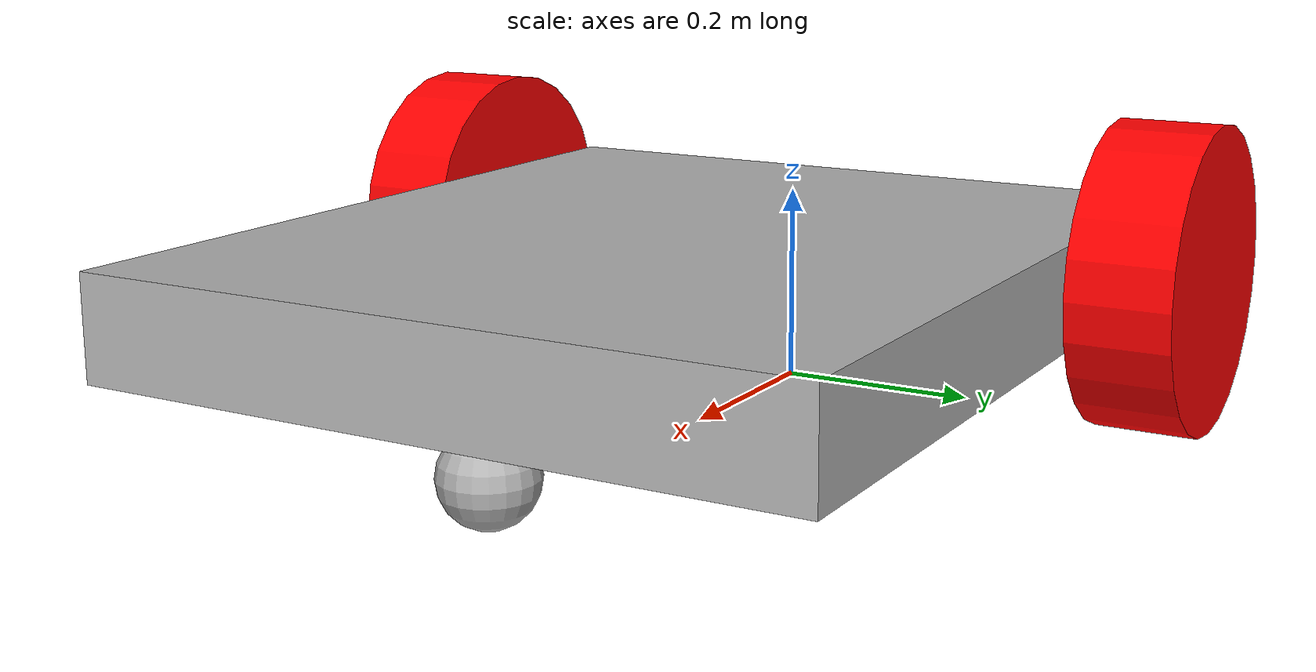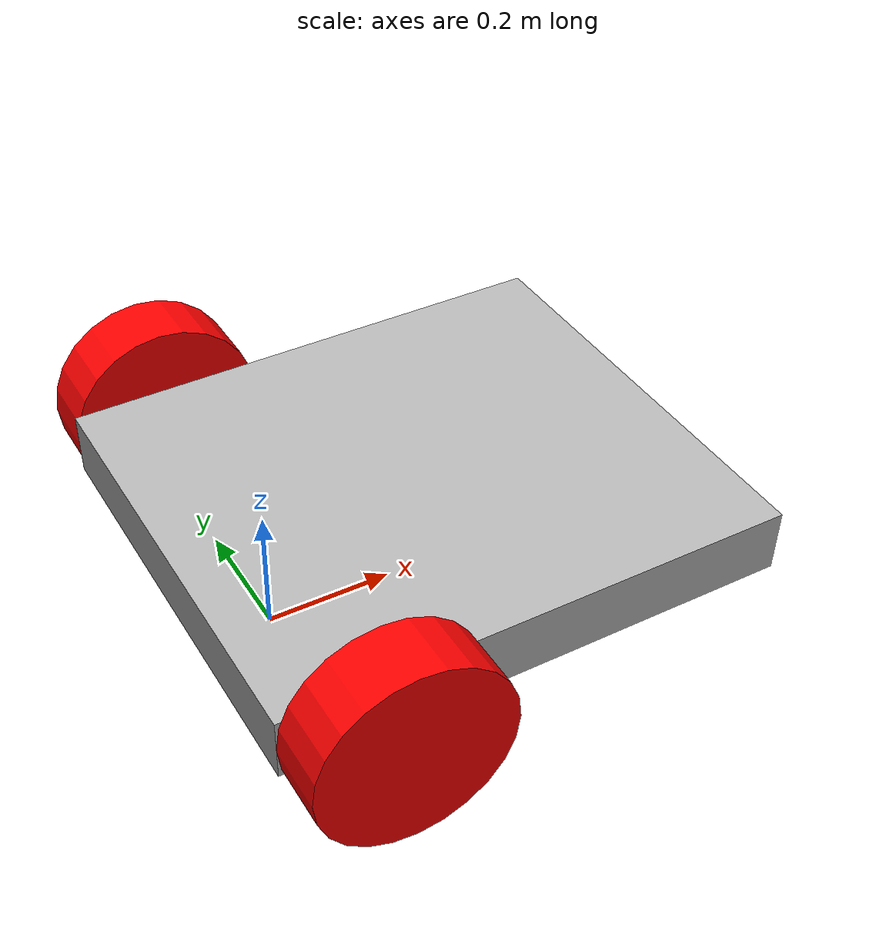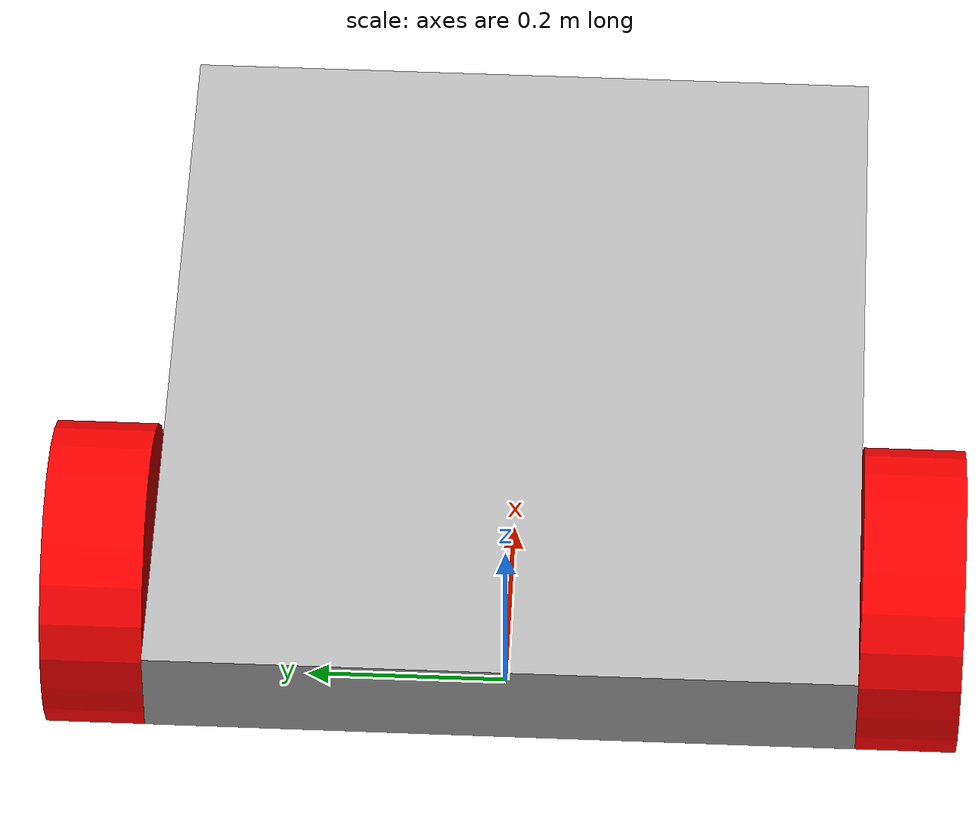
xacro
<?xml version="1.0"?>

<robot xmlns:xacro="http://ww.ros.org/wiki/xacro" name="diff_robot">

    <!-- Every value is in SI units -->
    <xacro:property name="height_offset" value="0.15" />

    <xacro:property name="chassis_length" value="0.8" />
    <xacro:property name="chassis_width" value="0.7" />
    <xacro:property name="chassis_height" value="0.1" />
    <xacro:property name="chassis_mass" value="2" />

    <xacro:property name="wheel_radius" value="0.15" />
    <xacro:property name="wheel_thickness" value="0.1" />
    <xacro:property name="wheel_mass" value="0.3" />

    <xacro:property name="castor_radius" value="0.045" />
    <xacro:property name="castor_x_offset" value="0.55" />
    <xacro:property name="castor_mass" value="0.1" />

    <link name="base_footprint">
    </link>

    <link name="base_link">
        <visual>
            <geometry>
                <box size="${chassis_length} ${chassis_width} ${chassis_height}" />
            </geometry>
            <material name="LightGrey">
                <color rgba="0.7 0.7 0.7 1.0"/>
            </material>
            <origin xyz="0.250 0.0 0.0" rpy="0.0 0.0 0.0"/>
        </visual>
        <collision>
            <geometry>
                <box size="0 0 0" />
            </geometry>
        </collision>
        <inertial>
            <mass value="${chassis_mass}"/>
            <origin xyz="0.250 0.0 0.0" rpy="0.0 0.0 0.0"/>
            <inertia ixx="${1/12*chassis_mass*(pow(chassis_height,2)+pow(chassis_length,2))}" ixy="0.0" ixz="0.0" iyy="${1/12*chassis_mass*(pow(chassis_width,2)+pow(chassis_height,2))}" iyz="0.0" izz="${1/12*chassis_mass*(pow(chassis_width,2)+pow(chassis_length,2))}"/>
        </inertial>
    </link>

    <joint name="base_joint" type="fixed">
        <parent link="base_footprint"/>
        <child link="base_link"/>
        <origin xyz="0 0 ${height_offset}" rpy="0 0 0"/>
        <axis xyz="0 0 0"/>
    </joint>

    <xacro:macro name='wheel' params='name x_offset wheel_separation'>
        <link name="wheel_${name}_link">
            <visual>
                <geometry>
                    <cylinder radius="${wheel_radius}" length="${wheel_thickness}"/>
                </geometry>
                <material name="Red">
                    <color rgba="1. 0. 0. 1"/>
                </material>
            </visual>
            <collision>
                <geometry>
                    <cylinder radius="${wheel_radius}" length="${wheel_thickness}"/>
                </geometry>
            </collision>
            <inertial>
                <mass value="${wheel_mass}"/>
                <origin xyz="0.0 0.0 0.0" rpy="0.0 0.0 0.0"/>
                <inertia ixx="${1/12*wheel_mass*(3*pow(wheel_radius,2)+pow(wheel_thickness,2))}" ixy="0.0" ixz="0.0" iyy="${1/12*wheel_mass*(3*pow(wheel_radius,2)+pow(wheel_thickness,2))}" iyz="0.0" izz="${1/2*wheel_mass*pow(wheel_radius,2)}"/>
            </inertial>
        </link>

        <joint name="wheel_${name}_joint" type="continuous">
            <parent link="base_link"/>
            <child link="wheel_${name}_link"/>
            <origin xyz="${x_offset} ${wheel_separation/2} 0" rpy="${-pi/2} 0 0"/>
            <axis xyz="0 0 1"/>
        </joint>
    </xacro:macro>

    <link name="castor_link">
        <visual>
            <geometry>
                <sphere radius="${castor_radius}"/>
            </geometry>
            <material name="LightGrey">
                <color rgba="0.7 0.7 0.7 1.0"/>
            </material>
        </visual>
        <collision>
            <geometry>
                <sphere radius="${castor_radius}"/>
            </geometry>
        </collision>
        <inertial>
            <mass value="${castor_mass}"/>
            <origin xyz="0.0 0.0 0.0" rpy="0.0 0.0 0.0"/>
            <inertia ixx="${2/5*castor_mass*pow(castor_radius,2)}" ixy="0.0" ixz="0.0" iyy="${2/5*castor_mass*pow(castor_radius,2)}" iyz="0.0" izz="${2/5*castor_mass*pow(castor_radius,2)}"/>
        </inertial>
    </link>

    <joint name="castor_joint" type="fixed">
        <parent link="base_link"/>
        <child link="castor_link"/>
        <origin xyz="${castor_x_offset} 0 ${-height_offset + castor_radius}" rpy="0 0 0"/>
        <axis xyz="0 0 0"/>
    </joint>

    <!-- Right wheel-->
    <xacro:wheel name="right" x_offset="0" wheel_separation="-0.80"/>

    <!-- Left Wheel -->
    <xacro:wheel name="left" x_offset="0" wheel_separation="0.80"/>

    <!-- Include gazebo plugins -->
    <xacro:include filename="$(find diff_robot_gazebo)/urdf/gazebo.xacro" />
    <xacro:include filename="$(find diff_robot_controller_gazebo)/urdf/gazebo_controller.xacro" />

</robot>
